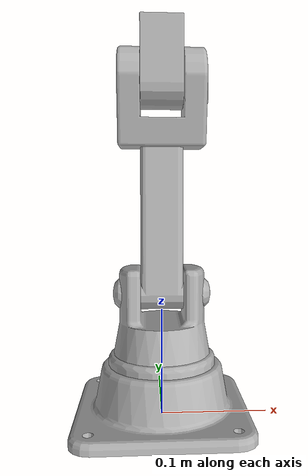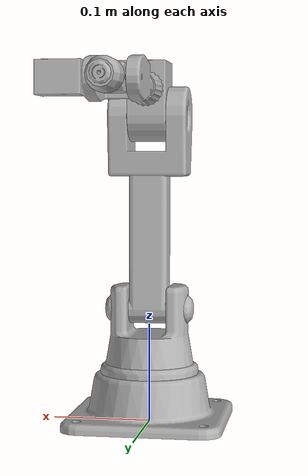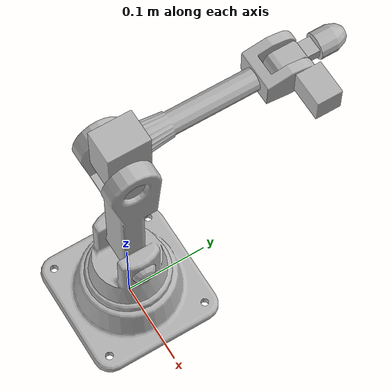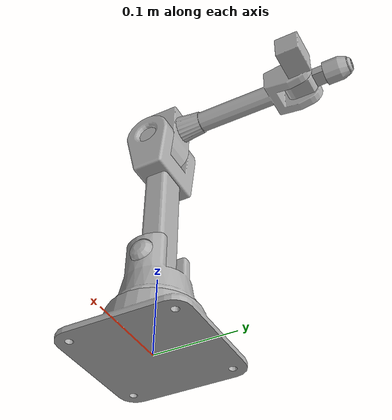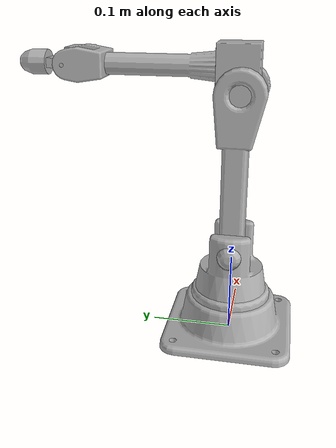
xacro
<?xml version="1.0" ?>
<robot name="robot_proyecto" xmlns:xacro="http://www.ros.org/wiki/xacro">

<xacro:include filename="$(find robot_proyecto_description)/urdf/materials.xacro" />
<xacro:include filename="$(find robot_proyecto_description)/urdf/robot_proyecto.trans" />
<xacro:include filename="$(find robot_proyecto_description)/urdf/robot_proyecto.gazebo" />

<link name="world" />

<joint name="world_to_base_link=" type="fixed">
     <parent link="world"/>
     <child link="base_link"/>
</joint>

<link name="base_link">
  <inertial>
    <origin xyz="-3.0643350533575795e-15 -5.81835769624857e-17 0.018608735782155033" rpy="0 0 0"/>
    <mass value="3.681210634499537"/>
    <inertia ixx="0.007055" iyy="0.007055" izz="0.012041" ixy="-0.0" iyz="-0.0" ixz="-0.0"/>
  </inertial>
  <visual>
    <origin xyz="0 0 0" rpy="0 0 0"/>
    <geometry>
      <mesh filename="package://robot_proyecto_description/meshes/base_link.stl" />
    </geometry>
    <material name="silver"/>
  </visual>
  <collision>
    <origin xyz="0 0 0" rpy="0 0 0"/>
    <geometry>
      <mesh filename="package://robot_proyecto_description/meshes/base_link.stl" />
    </geometry>
  </collision>
</link>

<link name="link2_1">
  <inertial>
    <origin xyz="5.03801001463613e-10 -0.002257669022233806 0.13383977677365372" rpy="0 0 0"/>
    <mass value="2.0825690848458756"/>
    <inertia ixx="0.009789" iyy="0.010731" izz="0.001784" ixy="0.0" iyz="0.000234" ixz="-0.0"/>
  </inertial>
  <visual>
    <origin xyz="0.0 -0.0 -0.116" rpy="0 0 0"/>
    <geometry>
      <mesh filename="package://robot_proyecto_description/meshes/link2_1.stl"/>
    </geometry>
    <material name="silver"/>
  </visual>
  <collision>
    <origin xyz="0.0 -0.0 -0.116" rpy="0 0 0"/>
    <geometry>
      <mesh filename="package://robot_proyecto_description/meshes/link2_1.stl"/>
    </geometry>
  </collision>
</link>

<link name="link3_1">
  <inertial>
    <origin xyz="-3.551362869946606e-19 0.00434317057470694 0.015475703131377472" rpy="0 0 0"/>
    <mass value="1.2719232207208113"/>
    <inertia ixx="0.000833" iyy="0.000832" izz="0.000467" ixy="-0.0" iyz="-1.7e-05" ixz="-0.0"/>
  </inertial>
  <visual>
    <origin xyz="-0.0 0.005 -0.311" rpy="0 0 0"/>
    <geometry>
      <mesh filename="package://robot_proyecto_description/meshes/link3_1.stl"/>
    </geometry>
    <material name="silver"/>
  </visual>
  <collision>
    <origin xyz="-0.0 0.005 -0.311" rpy="0 0 0"/>
    <geometry>
      <mesh filename="package://robot_proyecto_description/meshes/link3_1.stl"/>
    </geometry>
  </collision>
</link>

<link name="link4_1">
  <inertial>
    <origin xyz="0.01068326586499289 0.12176118750392664 -5.493222942482001e-05" rpy="0 0 0"/>
    <mass value="1.1883665556027005"/>
    <inertia ixx="0.004412" iyy="0.000734" izz="0.004962" ixy="-0.000714" iyz="4e-06" ixz="2e-06"/>
  </inertial>
  <visual>
    <origin xyz="-0.0 -0.025 -0.338" rpy="0 0 0"/>
    <geometry>
      <mesh filename="package://robot_proyecto_description/meshes/link4_1.stl"/>
    </geometry>
    <material name="silver"/>
  </visual>
  <collision>
    <origin xyz="-0.0 -0.025 -0.338" rpy="0 0 0"/>
    <geometry>
      <mesh filename="package://robot_proyecto_description/meshes/link4_1.stl"/>
    </geometry>
  </collision>
</link>

<link name="link5_1">
  <inertial>
    <origin xyz="2.7841458772332624e-09 -0.005581416777431569 5.13738845105971e-05" rpy="0 0 0"/>
    <mass value="0.19239051082723982"/>
    <inertia ixx="4.5e-05" iyy="1.7e-05" izz="4.6e-05" ixy="-0.0" iyz="-0.0" ixz="-0.0"/>
  </inertial>
  <visual>
    <origin xyz="-0.0 -0.203 -0.337766" rpy="0 0 0"/>
    <geometry>
      <mesh filename="package://robot_proyecto_description/meshes/link5_1.stl"/>
    </geometry>
    <material name="silver"/>
  </visual>
  <collision>
    <origin xyz="-0.0 -0.203 -0.337766" rpy="0 0 0"/>
    <geometry>
      <mesh filename="package://robot_proyecto_description/meshes/link5_1.stl"/>
    </geometry>
  </collision>
</link>

<link name="link6_1">
  <inertial>
    <origin xyz="-3.2260852801836125e-07 0.014664378789435384 -1.1553220288229582e-06" rpy="0 0 0"/>
    <mass value="0.15787075091036468"/>
    <inertia ixx="2.1e-05" iyy="1.7e-05" izz="2.1e-05" ixy="0.0" iyz="0.0" ixz="0.0"/>
  </inertial>
  <visual>
    <origin xyz="-0.0 -0.228 -0.338" rpy="0 0 0"/>
    <geometry>
      <mesh filename="package://robot_proyecto_description/meshes/link6_1.stl"/>
    </geometry>
    <material name="silver"/>
  </visual>
  <collision>
    <origin xyz="-0.0 -0.228 -0.338" rpy="0 0 0"/>
    <geometry>
      <mesh filename="package://robot_proyecto_description/meshes/link6_1.stl"/>
    </geometry>
  </collision>
</link>

<link name="link1_1">
  <inertial>
    <origin xyz="-2.1512973629865014e-05 -4.170466759319841e-09 0.026937708587327566" rpy="0 0 0"/>
    <mass value="2.3854069792520733"/>
    <inertia ixx="0.002223" iyy="0.002484" izz="0.002413" ixy="-0.0" iyz="-0.0" ixz="2e-06"/>
  </inertial>
  <visual>
    <origin xyz="-0.0 -0.0 -0.05" rpy="0 0 0"/>
    <geometry>
      <mesh filename="package://robot_proyecto_description/meshes/link1_1.stl"/>
    </geometry>
    <material name="silver"/>
  </visual>
  <collision>
    <origin xyz="-0.0 -0.0 -0.05" rpy="0 0 0"/>
    <geometry>
      <mesh filename="package://robot_proyecto_description/meshes/link1_1.stl"/>
    </geometry>
  </collision>
</link>

<joint name="revo_2" type="revolute">
  <origin xyz="-0.0 0.0 0.066" rpy="0 0 0"/>
  <parent link="link1_1"/>
  <child link="link2_1"/>
  <axis xyz="1.0 0.0 0.0"/>
  <limit upper="1.570796" lower="-1.570796" effort="100" velocity="100"/>
</joint>

<joint name="revo_3" type="revolute">
  <origin xyz="0.0 -0.005 0.195" rpy="0 0 0"/>
  <parent link="link2_1"/>
  <child link="link3_1"/>
  <axis xyz="1.0 0.0 0.0"/>
  <limit upper="1.570796" lower="-1.570796" effort="100" velocity="100"/>
</joint>

<joint name="revo_4" type="revolute">
  <origin xyz="0.0 0.03 0.027" rpy="0 0 0"/>
  <parent link="link3_1"/>
  <child link="link4_1"/>
  <axis xyz="0.0 1.0 0.0"/>
  <limit upper="6.283185" lower="0.0" effort="100" velocity="100"/>
</joint>

<joint name="revo_5" type="revolute">
  <origin xyz="0.0 0.178 -0.000234" rpy="0 0 0"/>
  <parent link="link4_1"/>
  <child link="link5_1"/>
  <axis xyz="-1.0 0.0 0.0"/>
  <limit upper="1.570796" lower="-1.570796" effort="100" velocity="100"/>
</joint>

<joint name="revo_6" type="revolute">
  <origin xyz="0.0 0.025 0.000234" rpy="0 0 0"/>
  <parent link="link5_1"/>
  <child link="link6_1"/>
  <axis xyz="0.0 1.0 0.0"/>
  <limit upper="6.283185" lower="0.0" effort="100" velocity="100"/>
</joint>

<joint name="revo_1" type="revolute">
  <origin xyz="0.0 0.0 0.05" rpy="0 0 0"/>
  <parent link="base_link"/>
  <child link="link1_1"/>
  <axis xyz="0.0 0.0 1.0"/>
  <limit upper="6.283185" lower="0.0" effort="100" velocity="100"/>
</joint>

</robot>

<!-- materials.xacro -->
<robot name="robot_proyecto" xmlns:xacro="http://www.ros.org/wiki/xacro" >

<material name="silver">
  <color rgba="0.700 0.700 0.700 1.000"/>
</material>

</robot>

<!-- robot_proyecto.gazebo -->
<robot name="robot_proyecto" xmlns:xacro="http://www.ros.org/wiki/xacro" >

<xacro:property name="body_color" value="Gazebo/Silver" />

<gazebo>
  <plugin name="gazebo_ros_control" filename="libgazebo_ros_control.so">
    <robotNamespace>/robot_proyecto</robotNamespace>
  </plugin>
</gazebo>

<gazebo reference="base_link">
  <material>${body_color}</material>
  <mu1>0.2</mu1>
  <mu2>0.2</mu2>
  <selfCollide>true</selfCollide>
  <gravity>0</gravity>
</gazebo>

<gazebo reference="link2_1">
  <material>${body_color}</material>
  <mu1>0.2</mu1>
  <mu2>0.2</mu2>
  <selfCollide>true</selfCollide>
</gazebo>

<gazebo reference="link3_1">
  <material>${body_color}</material>
  <mu1>0.2</mu1>
  <mu2>0.2</mu2>
  <selfCollide>true</selfCollide>
</gazebo>

<gazebo reference="link4_1">
  <material>${body_color}</material>
  <mu1>0.2</mu1>
  <mu2>0.2</mu2>
  <selfCollide>true</selfCollide>
</gazebo>

<gazebo reference="link5_1">
  <material>${body_color}</material>
  <mu1>0.2</mu1>
  <mu2>0.2</mu2>
  <selfCollide>true</selfCollide>
</gazebo>

<gazebo reference="link6_1">
  <material>${body_color}</material>
  <mu1>0.2</mu1>
  <mu2>0.2</mu2>
  <selfCollide>true</selfCollide>
</gazebo>

<gazebo reference="link1_1">
  <material>${body_color}</material>
  <mu1>0.2</mu1>
  <mu2>0.2</mu2>
  <selfCollide>true</selfCollide>
</gazebo>

</robot>
